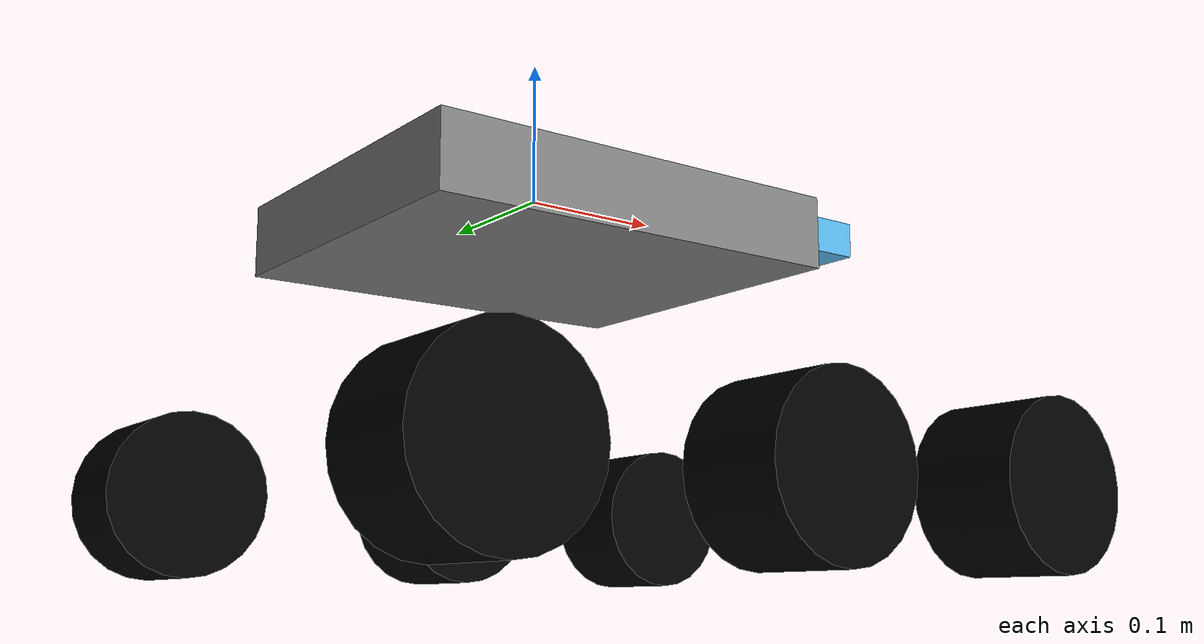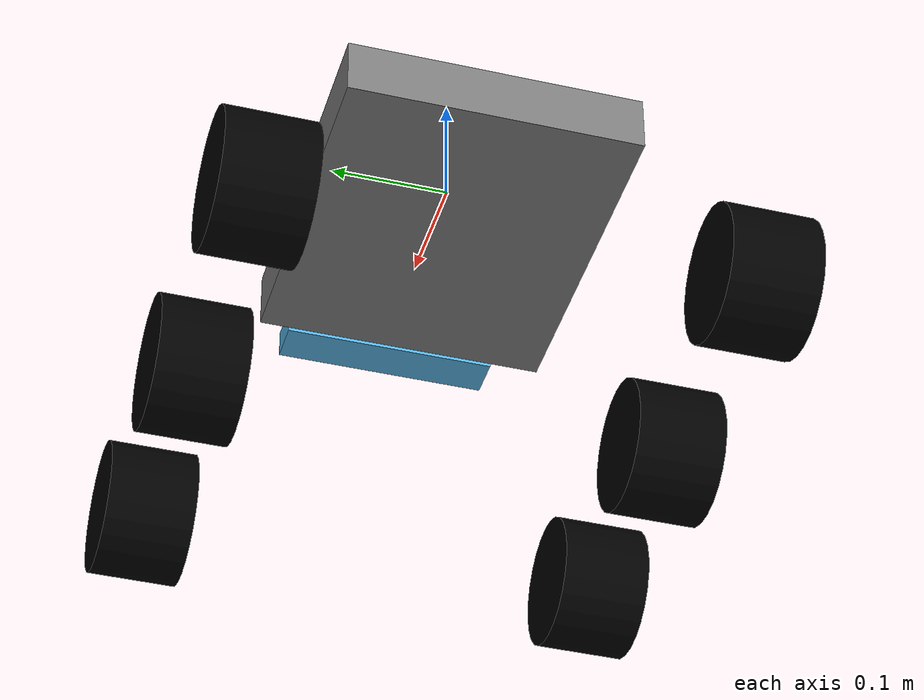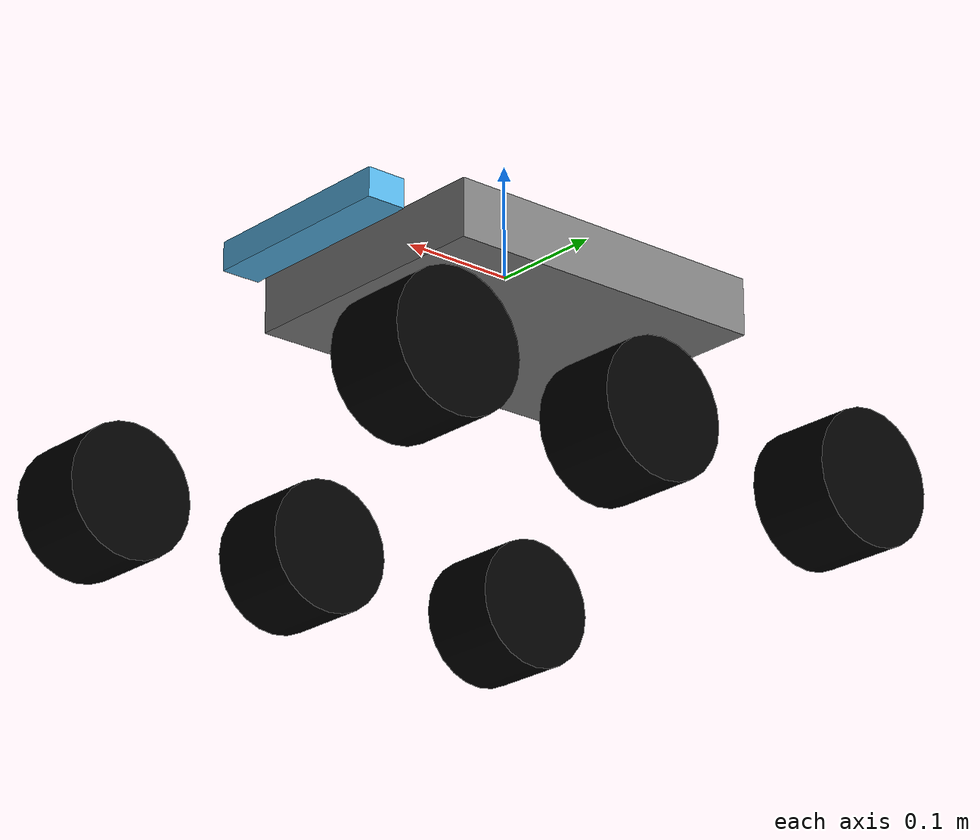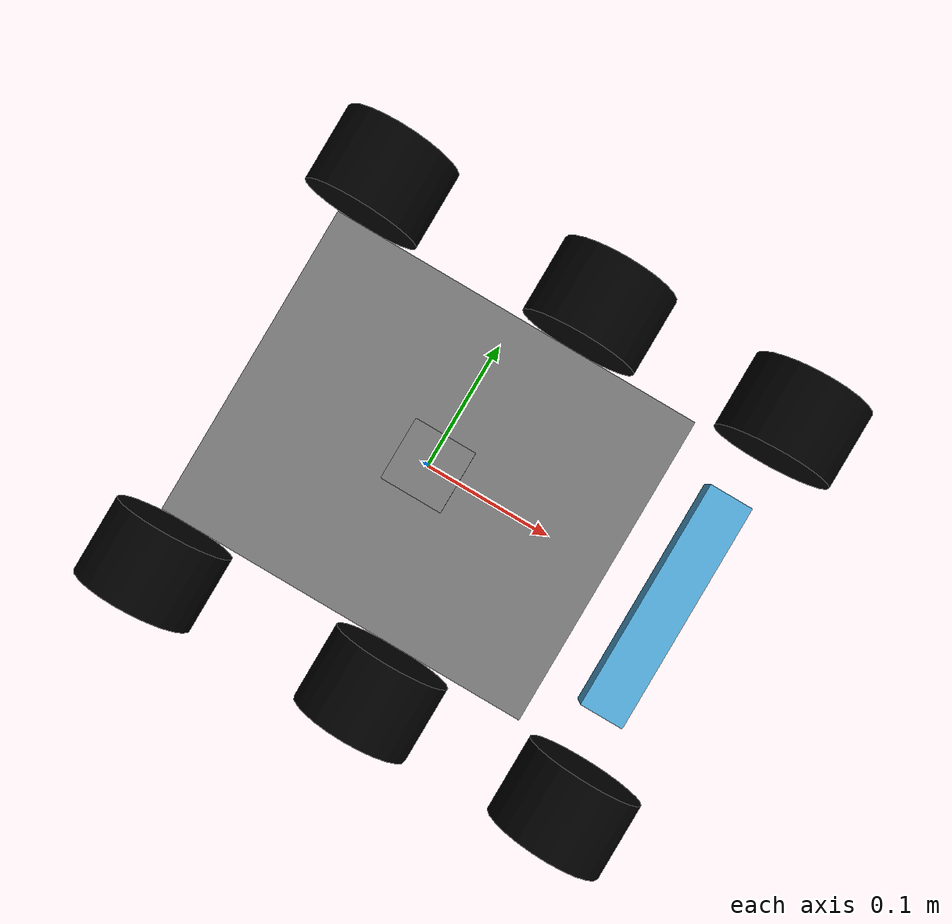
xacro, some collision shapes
<?xml version="1.0"?>

<robot name="rover" xmlns:xacro="http://www.ros.org/wiki/xacro">
  <!-- Degree-to-radian conversions -->
  <xacro:property name="degrees_45" value="0.785398163"/>
  <xacro:property name="degrees_90" value="1.57079633"/>

  <!-- body_length is measured along the x axis, body_width
       along the y axis, and body_height along the z axis. -->
  <xacro:property name="body_length"    value="0.300"/>
  <xacro:property name="body_width"     value="0.250"/>
  <xacro:property name="body_height"    value="0.050"/>
  <xacro:property name="body_mass"      value="3.000"/>
  <xacro:property name="body_clearance" value="0.200"/>

  <xacro:property name="wheelbase_rocker" value="0.350"/>
  <xacro:property name="wheelbase_bogie"  value="0.200"/>
  <xacro:property name="x_center_rocker"  value="0.000"/>
  <xacro:property name="x_center_bogie"   value="0.150"/>
  <xacro:property name="track"            value="0.400"/>

  <xacro:property name="hub_dia"       value="0.100"/>
  <xacro:property name="tire_dia"      value="0.115"/>
  <xacro:property name="tire_width"    value="0.075"/>
  <xacro:property name="wheel_mass"    value="0.200"/>

  <xacro:property name="axle_eff_limit" value="5.12766"/>
  <xacro:property name="axle_vel_limit" value="244.8696"/>

  <material name="body_mat">
    <color rgba="0.5 0.5 0.5 1"/>
  </material>
  <material name="tire_mat">
    <color rgba="0 0 0 1"/>
  </material>

  <!-- Null inertial element. This is needed to make the model work with
       Gazebo. -->
  <xacro:macro name="null_inertial">
    <inertial>
      <mass value="0.001"/>
      <inertia ixx="0.001" ixy="0" ixz="0" iyy="0.001" iyz="0" izz="0.001"/>
    </inertial>
  </xacro:macro>

  <!-- Inertia of a solid cuboid. Width is measured along the x axis, depth
       along the y axis, and height along the z axis. -->
  <xacro:macro name="solid_cuboid_inertial"
               params="width depth height mass *origin">
    <inertial>
      <xacro:insert_block name="origin"/>
      <mass value="${mass}"/>
      <inertia ixx="${mass * (depth * depth + height * height) / 12}"
               ixy="0" ixz="0"
               iyy="${mass * (width * width + height * height) / 12}"
               iyz="0"
               izz="${mass * (width * width + depth * depth) / 12}"/>
    </inertial>
  </xacro:macro>

  <xacro:macro name="thick_walled_tube_inertial"
               params="inner_rad outer_rad height mass">
    <inertial>
      <mass value="${mass}"/>
      <inertia ixx="${(1 / 12) * mass * (3 * (inner_rad * inner_rad +
                    outer_rad * outer_rad) + height * height)}"
               ixy="0" ixz="0"
               iyy="${(1 / 12) * mass * (3 * (inner_rad * inner_rad +
                    outer_rad * outer_rad) + height * height)}"
               iyz="0"
               izz="${mass * (inner_rad * inner_rad +
                    outer_rad * outer_rad) / 2}"/>
    </inertial>
  </xacro:macro>

  <!-- The "wheel" macro defines an axle carrier, axle, and wheel. -->
  <xacro:macro name="wheel" params="lr_prefix fr_prefix lr_pos fr_pos">
    <joint name="${lr_prefix}_${fr_prefix}_axle" type="continuous">
      <parent link="base_link"/>
      <child link="${lr_prefix}_${fr_prefix}_wheel"/>
      <origin xyz="${fr_pos}
                   ${lr_pos}
                   ${- body_clearance}"
              rpy="${degrees_90} 0 0"/>
      <axis xyz="0 0 -1"/>
      <limit effort="${axle_eff_limit}" velocity="${axle_vel_limit}"/>
    </joint>
    <transmission name="${lr_prefix}_${fr_prefix}_axle_trans">
      <type>transmission_interface/SimpleTransmission</type>
      <joint name="${lr_prefix}_${fr_prefix}_axle">
        <hardwareInterface>VelocityJointInterface</hardwareInterface>
      </joint>
      <actuator name="${lr_prefix}_${fr_prefix}_axle_act">
        <hardwareInterface>VelocityJointInterface</hardwareInterface>
        <mechanicalReduction>1</mechanicalReduction>
      </actuator>
    </transmission>

    <link name="${lr_prefix}_${fr_prefix}_wheel">
      <visual>
        <origin xyz="0 0 0"/>
        <geometry>
          <cylinder radius="${tire_dia / 2}" length="${tire_width}"/>
        </geometry>
        <material name="tire_mat"/>
      </visual>

      <collision>
        <origin xyz="0 0 0"/>
        <geometry>
          <cylinder radius="${tire_dia / 2}" length="${tire_width}"/>
        </geometry>
      </collision>

      <xacro:thick_walled_tube_inertial
          inner_rad="${hub_dia / 2}" outer_rad="${tire_dia / 2}"
          height="${tire_width}" mass="${wheel_mass}"/>
    </link>

    <gazebo reference="${lr_prefix}_${fr_prefix}_wheel">
      <material>Gazebo/Black</material>
    </gazebo>
  </xacro:macro>

  <!-- base_link must have geometry so that its axes can be displayed in
       rviz. -->
  <link name="base_link">
    <visual>
      <geometry>
        <box size="0.05 0.05 0.01"/>
      </geometry>
      <material name="body_mat"/>
    </visual>
  </link>
  <gazebo reference="base_link">
    <material>Gazebo/Green</material>
  </gazebo>

  <joint name="imu_joint" type="fixed">
		<axis xyz="1 0 0"/>
		<origin xyz="0 0 0.05"/>
		<parent link="base_link"/>
		<child link="imu_link"/>
	</joint>

	<link name="imu_link">
	  <inertial>
	    <mass value="0.001"/>
	    <origin rpy="0 0 0" xyz="0 0 0"/>
	    <inertia ixx="0.0001" ixy="0" ixz="0" iyy="0.000001" iyz="0" izz="0.0001"/>
	  </inertial>
	  <visual>
	    <origin rpy="0 0 0" xyz="0 0 0"/>
	    <geometry>
	      <box size="0.001 0.001 0.001"/>
	    </geometry>
	  </visual>
	  <collision>
	    <origin rpy="0 0 0" xyz="0 0 0"/>
	    <geometry>
	      <box size=".001 .001 .001"/>
	    </geometry>
	  </collision>
	</link>

  <!-- body -->
  <link name="body">
    <visual>
      <origin xyz="0 0 ${-body_height / 2}"/>
      <geometry>
        <box size="${body_length} ${body_width} ${body_height}"/>
      </geometry>
      <material name="body_mat"/>
    </visual>

    <collision>
      <origin xyz="0 0 ${-body_height / 2}"/>
      <geometry>
        <box size="${body_length} ${body_width} ${body_height}"/>
      </geometry>
    </collision>

    <xacro:solid_cuboid_inertial
        width="${body_length}" depth="${body_width}"
        height="${body_height}" mass="${body_mass}">
      <origin xyz="0 0 ${-body_height / 2}"/>
    </xacro:solid_cuboid_inertial>
  </link>
  <gazebo reference="body">
    <material>Gazebo/Grey</material>
  </gazebo>

  <joint name="base_link_to_chasis" type="fixed">
    <parent link="base_link"/>
    <child link="body"/>
  </joint>

  <!-- Wheels -->
  <xacro:wheel lr_prefix="left_bogie" fr_prefix="front"
               lr_pos="${track / 2}"
               fr_pos="${x_center_bogie + wheelbase_bogie / 2}"
               />
  <xacro:wheel lr_prefix="left_bogie" fr_prefix="rear"
               lr_pos="${track / 2}"
               fr_pos="${x_center_bogie - wheelbase_bogie / 2}"
               />
  <xacro:wheel lr_prefix="left_rocker" fr_prefix="rear"
               lr_pos="${track / 2}"
               fr_pos="${x_center_rocker - wheelbase_rocker / 2}"
               />
  <xacro:wheel lr_prefix="right_bogie" fr_prefix="front"
               lr_pos="${- track / 2}"
               fr_pos="${x_center_bogie + wheelbase_bogie / 2}"
               />
  <xacro:wheel lr_prefix="right_bogie" fr_prefix="rear"
               lr_pos="${- track / 2}"
               fr_pos="${x_center_bogie - wheelbase_bogie / 2}"
               />
  <xacro:wheel lr_prefix="right_rocker" fr_prefix="rear"
               lr_pos="${- track / 2}"
               fr_pos="${x_center_rocker - wheelbase_rocker / 2}"
               />

  <gazebo>
    <plugin name="gazebo_ros_control" filename="libgazebo_ros_control.so" />
  </gazebo>

  <!-- Depth sensor -->
  <xacro:include filename="$(find rover_description)/urdf/depth_sensor.urdf.xacro" />
  <xacro:depth_sensor name="camera" parent="base_link">
    <origin xyz="${body_length / 2 + 0.05} 0.0 ${- body_height / 4}" rpy="0 0 0"/>
  </xacro:depth_sensor>

  <!-- IMU sensor-->
  <gazebo>
    <plugin name="imu_sim" filename="libhector_gazebo_ros_imu.so" type="imu">
      <alwaysOn>true</alwaysOn>
      <topicName>imu/data</topicName>
      <updateRate>100.0</updateRate>
      <serviceName>imu_service</serviceName>
      <bodyName>imu_link</bodyName>
      <frameId>imu_link</frameId>

      <accelOffset>0.1 0.1 0.1</accelOffset>
      <accelDrift>0.0 0.0 0.0</accelDrift>
      <accelDriftFrequency>0.0 0.0 0.0</accelDriftFrequency>
      <accelGaussianNoise>0.35 0.35 0.3</accelGaussianNoise>

      <rateOffset>0.0 0.0 0.0</rateOffset>
      <rateDrift>0.01 0.01 0.01</rateDrift>
      <rateDriftFrequency>0.0 0.0 0.0</rateDriftFrequency>
      <rateGaussianNoise>0.05 0.05 0.015</rateGaussianNoise>

      <headingOffset>0.0 0.0 0.0</headingOffset>
      <headingDrift>0.0 0.0 0.0</headingDrift>
      <headingDriftFrequency>0.0 0.0 0.0</headingDriftFrequency>
      <headingGaussianNoise>0.05 0.05 0.05</headingGaussianNoise>
    </plugin>
  </gazebo>

  <plugin name="magnetic_sim" filename="libhector_gazebo_ros_magnetic.so">
    <alwaysOn>true</alwaysOn>
    <topicName>magnetic/data</topicName>
    <updateRate>100.0</updateRate>
    <bodyName>imu_link</bodyName>
    <frameId>imu_link</frameId>
    <magnitude>46967.9</magnitude>
    <declination>-2.3865</declination>
    <inclination>-61.7292</inclination>
    <offset>0.0 0.0 0.0</offset>
    <drift>0.0 0.0 0.0</drift>
    <gaussianNoise>100.0 100.0 100.0</gaussianNoise>
  </plugin>

  <plugin name="gps_sim" filename="libhector_gazebo_ros_gps.so">
    <updateRate>1.0</updateRate>
    <bodyName>imu_link</bodyName>
    <frameId>imu_link</frameId>
    <topicName>gps/fix</topicName>
    <velocityTopicName>gps/vel</velocityTopicName>
    <referenceLatitude>46.518125</referenceLatitude>
    <referenceLongitude>6.565539</referenceLongitude>
    <drift>0 0 0</drift>
    <gaussianNoise>0.0 0.0 0.0</gaussianNoise>
    <velocityDrift>0 0 0</velocityDrift>
    <velocityGaussianNoise>0.05 0.05 0.05</velocityGaussianNoise>
  </plugin>

</robot>

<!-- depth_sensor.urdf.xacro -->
<robot xmlns:xacro="http://www.ros.org/wiki/xacro">
  <xacro:property name="M_PI" value="3.1415926535897931" />

  <!-- This macro only adds the model-->
  <xacro:macro name="depth_sensor_model" params="name parent *origin">
    <joint name="${name}_joint" type="fixed">
      <xacro:insert_block name="origin" />
      <parent link="${parent}"/>
      <child link="${name}_link"/>
    </joint>

    <link name="${name}_link">
      <inertial>
        <mass value="0.200" />
        <origin xyz="0 0 0" rpy="0 0 0" />
        <inertia ixx="5.8083e-4" ixy="0" ixz="0" iyy="3.0833e-5" iyz="0" izz="5.9083e-4" />
      </inertial>
      <visual>
        <origin xyz="0 0 0" rpy="0 0 0" />
        <geometry>
          <mesh filename="package://hector_sensors_description/meshes/asus_camera/asus_camera_simple.dae"/>
        </geometry>
      </visual>
     <collision>
        <origin xyz="0 0 0" rpy="0 0 0" />
        <geometry>
          <box size="0.035 0.185 0.025"/>
        </geometry>
      </collision>
    </link>

    <joint name="${name}_depth_joint" type="fixed">
      <origin xyz="0.0 0.049 0.0" rpy="0 0 0" />
      <parent link="${name}_link" />
      <child link="${name}_depth_frame"/>
    </joint>

    <link name="${name}_depth_frame"/>

    <joint name="${name}_depth_optical_joint" type="fixed">
      <origin xyz="0 0 0" rpy="${-M_PI/2} 0.0 ${-M_PI/2}" />
      <parent link="${name}_depth_frame" />
      <child link="${name}_depth_optical_frame"/>
    </joint>

    <link name="${name}_depth_optical_frame"/>

    <joint name="${name}_rgb_joint" type="fixed">
      <origin xyz="0.0 0.022 0.0" rpy="0 0 0" />
      <parent link="${name}_link" />
      <child link="${name}_rgb_frame"/>
    </joint>

    <link name="${name}_rgb_frame"/>

    <joint name="${name}_rgb_optical_joint" type="fixed">
      <origin xyz="0 0 0" rpy="${-M_PI/2} 0.0 ${-M_PI/2}" />
      <parent link="${name}_rgb_frame" />
      <child link="${name}_rgb_optical_frame"/>
    </joint>

    <link name="${name}_rgb_optical_frame"/>
  </xacro:macro>

  <!-- The depth_sensor macro adds the model and also adds gazebo plugin -->
  <xacro:macro name="depth_sensor" params="name parent *origin">
    <xacro:depth_sensor_model name="${name}" parent="${parent}">
      <xacro:insert_block name="origin" />
    </xacro:depth_sensor_model>

    <gazebo reference="${name}_depth_frame">
      <sensor type="depth" name="${name}">
        <update_rate>20</update_rate>
        <camera>
          <horizontal_fov>${62.8 * M_PI/180.0}</horizontal_fov>
          <image>
            <format>R8G8B8</format>
            <width>640</width>
            <height>480</height>
          </image>
          <clip>
            <near>0.5</near>
            <far>9</far>
          </clip>
        </camera>
        <plugin name="${name}_camera_controller" filename="libgazebo_ros_openni_kinect.so">
          <cameraName>${name}</cameraName>
          <imageTopicName>${name}/rgb/image_raw</imageTopicName>
          <cameraInfoTopicName>${name}/rgb/camera_info</cameraInfoTopicName>
          <depthImageTopicName>${name}/depth/image_raw</depthImageTopicName>
          <depthImageCameraInfoTopicName>${name}/depth/camera_info</depthImageCameraInfoTopicName>
          <pointCloudTopicName>${name}/depth/points</pointCloudTopicName>
          <frameName>${name}_depth_optical_frame</frameName>
          <pointCloudCutoff>0.3</pointCloudCutoff>
          <pointCloudCutoffMax>5.0</pointCloudCutoffMax>
        </plugin>
      </sensor>
    </gazebo>
  </xacro:macro>
</robot>
